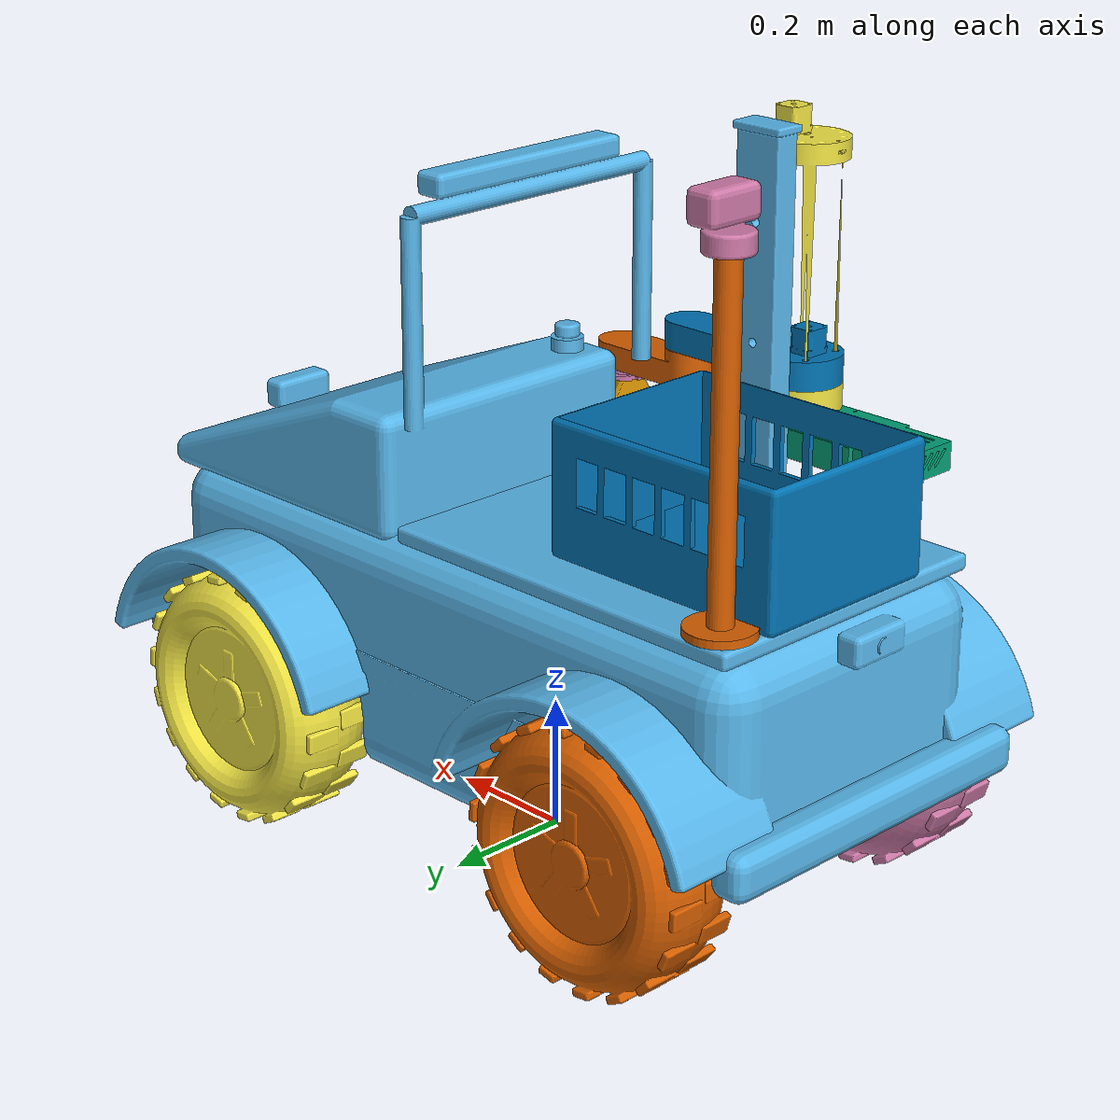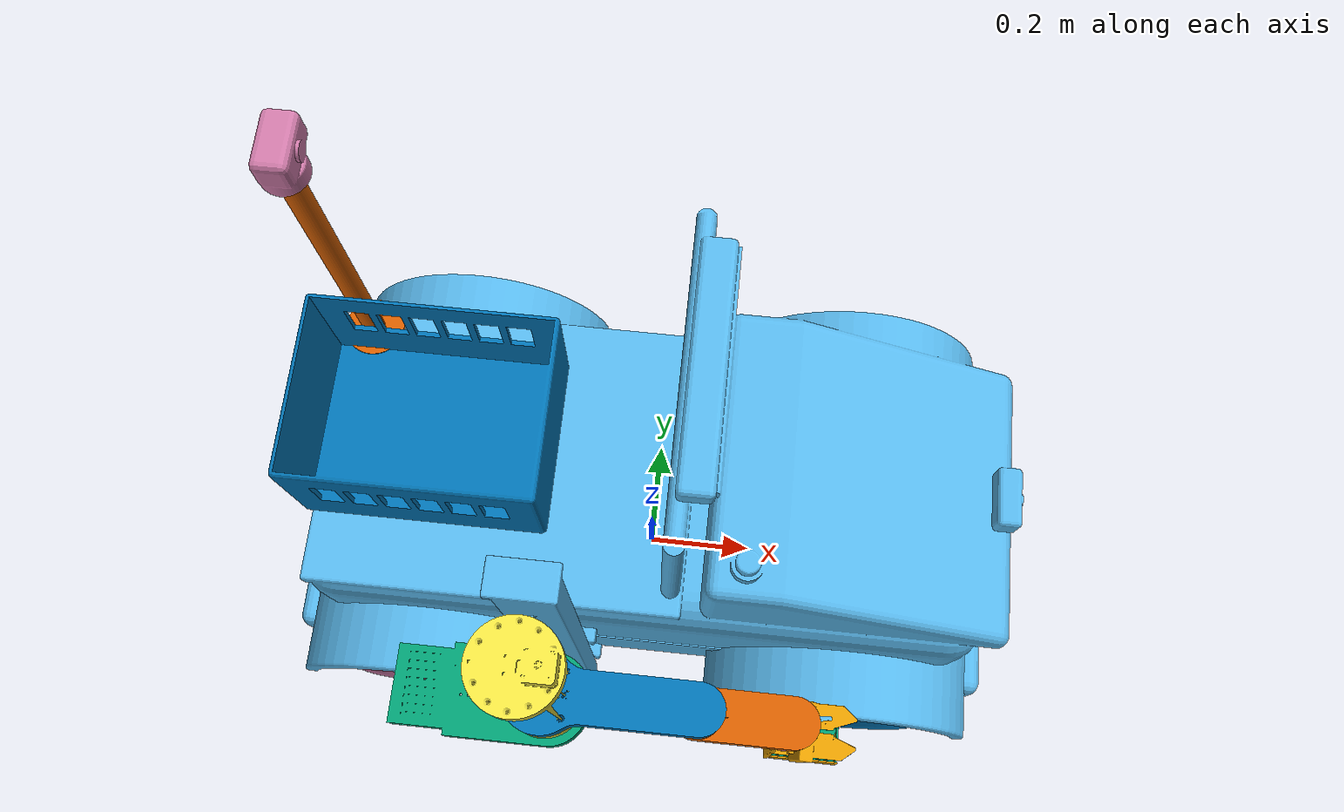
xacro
<?xml version="1.0"?>
<robot name="agribot" xmlns:xacro="http://www.ros.org/wiki/xacro">
  <xacro:arg name="tool" default="cutter"/>
  <xacro:arg name="mast_pin" default="2"/>
  <xacro:property name="mast_pins" value="${[0.10, 0.28, 0.46, 0.64, 0.82]}"/>

  <xacro:include filename="$(find agribot_description)/urdf/rover.urdf.xacro"/>
  <xacro:include filename="$(find agribot_description)/urdf/scara.urdf.xacro"/>
  <xacro:include filename="$(find agribot_description)/urdf/cutter.urdf.xacro"/>
  <xacro:include filename="$(find agribot_description)/urdf/stock_gripper.urdf.xacro"/>

  <xacro:agribot_rover prefix=""/>
  <xacro:agribot_scara prefix="scara_"/>
  <joint name="scara_mount" type="fixed">
    <parent link="scara_mast"/>
    <child link="scara_base_link"/>
    <origin xyz="0 -0.095 ${mast_pins[$(arg mast_pin)]}" rpy="0 0 0"/>
  </joint>
  <xacro:if value="${'$(arg tool)' == 'cutter'}">
    <xacro:agribot_cutter prefix="scara_"/>
  </xacro:if>
  <xacro:if value="${'$(arg tool)' == 'gripper'}">
    <xacro:agribot_stock_gripper prefix="scara_"/>
  </xacro:if>
</robot>

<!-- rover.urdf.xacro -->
<robot xmlns:xacro="http://www.ros.org/wiki/xacro">
<xacro:macro name="agribot_rover" params="prefix">
  <link name="${prefix}base_footprint"/>
  <link name="${prefix}base_link">
    <inertial>
      <!-- estimate: ride-on chassis with batteries -->
      <origin xyz="0 0 0.205" rpy="0 0 0"/>
      <mass value="30"/>
      <inertia ixx="1.4065" ixy="0" ixz="0" iyy="4.00525" iyz="0" izz="3.89925"/>
    </inertial>
    <visual>
      <origin xyz="0 0 0" rpy="0 0 0"/>
      <geometry><mesh filename="package://agribot_description/meshes/rover/visual/rover_body.obj"/></geometry>
    </visual>
    <collision>
      <origin xyz="0 0 0.205" rpy="0 0 0"/>
      <geometry><box size="1.14 0.51 0.55"/></geometry>
    </collision>
  </link>
  <joint name="${prefix}base_joint" type="fixed">
    <parent link="${prefix}base_footprint"/>
    <child link="${prefix}base_link"/>
    <origin xyz="0 0 0.19" rpy="0 0 0"/>
  </joint>
  <link name="${prefix}steer_link">
    <inertial>
      <!-- estimate -->
      <origin xyz="0 0 0" rpy="0 0 0"/>
      <mass value="0.5"/>
      <inertia ixx="0.00514167" ixy="0" ixz="0" iyy="0.000141667" iyz="0" izz="0.00520833"/>
    </inertial>
  </link>
  <joint name="${prefix}steer_joint" type="revolute">
    <!-- one steering motor, parallel steer until the real linkage is measured; wheelbase, track and limit are assumed (docs/work-plan.md) -->
    <parent link="${prefix}base_link"/>
    <child link="${prefix}steer_link"/>
    <origin xyz="0.36 0 0" rpy="0 0 0"/>
    <axis xyz="0 0 1"/>
    <limit lower="-0.436332" upper="0.436332" effort="20" velocity="1"/>
    <dynamics damping="1" friction="0.1"/>
  </joint>
  <link name="${prefix}front_left_wheel">
    <inertial>
      <!-- estimate -->
      <origin xyz="0 0 0" rpy="0 0 0"/>
      <mass value="1.5"/>
      <inertia ixx="0.01635" ixy="0" ixz="0" iyy="0.027075" iyz="0" izz="0.01635"/>
    </inertial>
    <visual>
      <origin xyz="0 0 0" rpy="0 0 0"/>
      <geometry><mesh filename="package://agribot_description/meshes/rover/visual/wheel.obj"/></geometry>
    </visual>
    <collision>
      <origin xyz="0 0 0" rpy="1.5708 0 0"/>
      <geometry><cylinder radius="0.19" length="0.15"/></geometry>
    </collision>
  </link>
  <joint name="${prefix}front_left_wheel_joint" type="continuous">
    <parent link="${prefix}steer_link"/>
    <child link="${prefix}front_left_wheel"/>
    <origin xyz="0 0.275 0" rpy="0 0 0"/>
    <axis xyz="0 1 0"/>
    <limit effort="40" velocity="6"/>
    <dynamics damping="0.2" friction="0.05"/>
  </joint>
  <link name="${prefix}front_right_wheel">
    <inertial>
      <!-- estimate -->
      <origin xyz="0 0 0" rpy="0 0 0"/>
      <mass value="1.5"/>
      <inertia ixx="0.01635" ixy="0" ixz="0" iyy="0.027075" iyz="0" izz="0.01635"/>
    </inertial>
    <visual>
      <origin xyz="0 0 0" rpy="0 0 0"/>
      <geometry><mesh filename="package://agribot_description/meshes/rover/visual/wheel.obj"/></geometry>
    </visual>
    <collision>
      <origin xyz="0 0 0" rpy="1.5708 0 0"/>
      <geometry><cylinder radius="0.19" length="0.15"/></geometry>
    </collision>
  </link>
  <joint name="${prefix}front_right_wheel_joint" type="continuous">
    <parent link="${prefix}steer_link"/>
    <child link="${prefix}front_right_wheel"/>
    <origin xyz="0 -0.275 0" rpy="0 0 0"/>
    <axis xyz="0 1 0"/>
    <limit effort="40" velocity="6"/>
    <dynamics damping="0.2" friction="0.05"/>
  </joint>
  <link name="${prefix}rear_left_wheel">
    <inertial>
      <!-- estimate -->
      <origin xyz="0 0 0" rpy="0 0 0"/>
      <mass value="1.5"/>
      <inertia ixx="0.01635" ixy="0" ixz="0" iyy="0.027075" iyz="0" izz="0.01635"/>
    </inertial>
    <visual>
      <origin xyz="0 0 0" rpy="0 0 0"/>
      <geometry><mesh filename="package://agribot_description/meshes/rover/visual/wheel.obj"/></geometry>
    </visual>
    <collision>
      <origin xyz="0 0 0" rpy="1.5708 0 0"/>
      <geometry><cylinder radius="0.19" length="0.15"/></geometry>
    </collision>
  </link>
  <joint name="${prefix}rear_left_wheel_joint" type="continuous">
    <parent link="${prefix}base_link"/>
    <child link="${prefix}rear_left_wheel"/>
    <origin xyz="-0.36 0.275 0" rpy="0 0 0"/>
    <axis xyz="0 1 0"/>
    <limit effort="40" velocity="6"/>
    <dynamics damping="0.2" friction="0.05"/>
  </joint>
  <link name="${prefix}rear_right_wheel">
    <inertial>
      <!-- estimate -->
      <origin xyz="0 0 0" rpy="0 0 0"/>
      <mass value="1.5"/>
      <inertia ixx="0.01635" ixy="0" ixz="0" iyy="0.027075" iyz="0" izz="0.01635"/>
    </inertial>
    <visual>
      <origin xyz="0 0 0" rpy="0 0 0"/>
      <geometry><mesh filename="package://agribot_description/meshes/rover/visual/wheel.obj"/></geometry>
    </visual>
    <collision>
      <origin xyz="0 0 0" rpy="1.5708 0 0"/>
      <geometry><cylinder radius="0.19" length="0.15"/></geometry>
    </collision>
  </link>
  <joint name="${prefix}rear_right_wheel_joint" type="continuous">
    <parent link="${prefix}base_link"/>
    <child link="${prefix}rear_right_wheel"/>
    <origin xyz="-0.36 -0.275 0" rpy="0 0 0"/>
    <axis xyz="0 1 0"/>
    <limit effort="40" velocity="6"/>
    <dynamics damping="0.2" friction="0.05"/>
  </joint>
  <link name="${prefix}front_camera_link"/>
  <link name="${prefix}front_camera_link_optical_frame"/>
  <joint name="${prefix}front_camera_link_optical_joint" type="fixed">
    <parent link="${prefix}front_camera_link"/>
    <child link="${prefix}front_camera_link_optical_frame"/>
    <origin xyz="0 0 0" rpy="-1.5708 0 -1.5708"/>
  </joint>
  <joint name="${prefix}front_camera_joint" type="fixed">
    <parent link="${prefix}base_link"/>
    <child link="${prefix}front_camera_link"/>
    <origin xyz="0.602 0 0.36" rpy="0 0 0"/>
  </joint>
  <link name="${prefix}rear_camera_link"/>
  <link name="${prefix}rear_camera_link_optical_frame"/>
  <joint name="${prefix}rear_camera_link_optical_joint" type="fixed">
    <parent link="${prefix}rear_camera_link"/>
    <child link="${prefix}rear_camera_link_optical_frame"/>
    <origin xyz="0 0 0" rpy="-1.5708 0 -1.5708"/>
  </joint>
  <joint name="${prefix}rear_camera_joint" type="fixed">
    <parent link="${prefix}base_link"/>
    <child link="${prefix}rear_camera_link"/>
    <origin xyz="-0.607 0 0.29" rpy="0 0 3.14159"/>
  </joint>
  <link name="${prefix}imu_link"/>
  <joint name="${prefix}imu_joint" type="fixed">
    <parent link="${prefix}base_link"/>
    <child link="${prefix}imu_link"/>
    <origin xyz="0 0 0.26" rpy="0 0 0"/>
  </joint>
  <link name="${prefix}harvest_crate">
    <inertial>
      <!-- estimate, empty -->
      <origin xyz="0 0 0.1" rpy="0 0 0"/>
      <mass value="0.6"/>
      <inertia ixx="0.0065" ixy="0" ixz="0" iyy="0.01" iyz="0" izz="0.0125"/>
    </inertial>
    <visual>
      <origin xyz="0 0 0" rpy="0 0 0"/>
      <geometry><mesh filename="package://agribot_description/meshes/rover/visual/harvest_crate.obj"/></geometry>
    </visual>
  </link>
  <joint name="${prefix}harvest_crate_joint" type="fixed">
    <parent link="${prefix}base_link"/>
    <child link="${prefix}harvest_crate"/>
    <origin xyz="-0.36 0.02 0.335" rpy="0 0 0"/>
  </joint>
  <link name="${prefix}scout_mast">
    <inertial>
      <!-- estimate -->
      <origin xyz="0 0 0.25" rpy="0 0 0"/>
      <mass value="0.4"/>
      <inertia ixx="0.00838667" ixy="0" ixz="0" iyy="0.00838667" iyz="0" izz="0.000106667"/>
    </inertial>
    <visual>
      <origin xyz="0 0 0" rpy="0 0 0"/>
      <geometry><mesh filename="package://agribot_description/meshes/rover/visual/scout_mast.obj"/></geometry>
    </visual>
  </link>
  <joint name="${prefix}scout_mast_joint" type="fixed">
    <parent link="${prefix}base_link"/>
    <child link="${prefix}scout_mast"/>
    <origin xyz="-0.5 0.2 0.335" rpy="0 0 0"/>
  </joint>
  <link name="${prefix}scout_pan_link">
    <inertial>
      <!-- estimate -->
      <origin xyz="0 0 0.05" rpy="0 0 0"/>
      <mass value="0.15"/>
      <inertia ixx="0.00018125" ixy="0" ixz="0" iyy="0.00014125" iyz="0" izz="0.0001625"/>
    </inertial>
    <visual>
      <origin xyz="0 0 0" rpy="0 0 0"/>
      <geometry><mesh filename="package://agribot_description/meshes/rover/visual/scout_head.obj"/></geometry>
    </visual>
  </link>
  <joint name="${prefix}scout_pan_joint" type="revolute">
    <!-- pan mechanism for the rotating scouting camera -->
    <parent link="${prefix}scout_mast"/>
    <child link="${prefix}scout_pan_link"/>
    <origin xyz="0 0 0.5" rpy="0 0 0"/>
    <axis xyz="0 0 1"/>
    <limit lower="-3.14159" upper="3.14159" effort="1" velocity="1.5"/>
    <dynamics damping="0.05" friction="0.01"/>
  </joint>
  <link name="${prefix}scout_camera_link"/>
  <link name="${prefix}scout_camera_link_optical_frame"/>
  <joint name="${prefix}scout_camera_link_optical_joint" type="fixed">
    <parent link="${prefix}scout_camera_link"/>
    <child link="${prefix}scout_camera_link_optical_frame"/>
    <origin xyz="0 0 0" rpy="-1.5708 0 -1.5708"/>
  </joint>
  <joint name="${prefix}scout_camera_joint" type="fixed">
    <parent link="${prefix}scout_pan_link"/>
    <child link="${prefix}scout_camera_link"/>
    <origin xyz="0.04 0 0.06" rpy="0 0 0"/>
  </joint>
  <link name="${prefix}scara_mast">
    <inertial>
      <!-- estimate -->
      <origin xyz="0 0 0.475" rpy="0 0 0"/>
      <mass value="2.5"/>
      <inertia ixx="0.188354" ixy="0" ixz="0" iyy="0.189354" iyz="0" izz="0.00166667"/>
    </inertial>
    <visual>
      <origin xyz="0 0 0" rpy="0 0 0"/>
      <geometry><mesh filename="package://agribot_description/meshes/rover/visual/scara_mast.obj"/></geometry>
    </visual>
    <collision>
      <origin xyz="0 0 0.475" rpy="0 0 0"/>
      <geometry><box size="0.08 0.04 0.95"/></geometry>
    </collision>
  </link>
  <joint name="${prefix}scara_mast_joint" type="fixed">
    <!-- side mast; the SCARA base pins on at one of five heights -->
    <parent link="${prefix}base_link"/>
    <child link="${prefix}scara_mast"/>
    <origin xyz="-0.12 -0.3 -0.11" rpy="0 0 0"/>
  </joint>
</xacro:macro>
</robot>

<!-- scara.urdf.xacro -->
<robot xmlns:xacro="http://www.ros.org/wiki/xacro">
<xacro:macro name="agribot_scara" params="prefix">
  <link name="${prefix}base_link">
    <inertial>
      <!-- estimate: mesh volumes x effective density: printed 560 kg/m3, metal 7850 kg/m3, motor 3800 kg/m3, belt 1200 kg/m3, switch 1500 kg/m3. Estimates; weigh the real parts. -->
      <origin xyz="-0.0712791 0.00956844 0.0371431" rpy="0 0 0"/>
      <mass value="0.833682"/>
      <inertia ixx="0.00124008" ixy="0.000315526" ixz="0.000159535" iyy="0.00418148" iyz="-0.000150768" izz="0.00491594"/>
    </inertial>
    <visual>
      <origin xyz="0 0 0" rpy="0 0 0"/>
      <geometry><mesh filename="package://agribot_description/meshes/scara/visual/base_link.obj"/></geometry>
    </visual>
    <collision>
      <geometry><mesh filename="package://agribot_description/meshes/scara/collision/base_link.stl"/></geometry>
    </collision>
  </link>
  <link name="${prefix}column_link">
    <inertial>
      <!-- estimate: mesh volumes x effective density: printed 560 kg/m3, metal 7850 kg/m3, motor 3800 kg/m3, belt 1200 kg/m3, switch 1500 kg/m3. Estimates; weigh the real parts. -->
      <origin xyz="0.00742286 3.44212e-06 0.228887" rpy="0 0 0"/>
      <mass value="1.80729"/>
      <inertia ixx="0.0462066" ixy="-1.87405e-09" ixz="-0.00165238" iyy="0.0465499" iyz="-1.66436e-07" izz="0.00324059"/>
    </inertial>
    <visual>
      <origin xyz="0 0 0" rpy="0 0 0"/>
      <geometry><mesh filename="package://agribot_description/meshes/scara/visual/column_link.obj"/></geometry>
    </visual>
    <collision>
      <geometry><mesh filename="package://agribot_description/meshes/scara/collision/column_link.stl"/></geometry>
    </collision>
  </link>
  <link name="${prefix}carriage_link">
    <inertial>
      <!-- estimate: mesh volumes x effective density: printed 560 kg/m3, metal 7850 kg/m3, motor 3800 kg/m3, belt 1200 kg/m3, switch 1500 kg/m3. Estimates; weigh the real parts. -->
      <origin xyz="0.0811465 -8.9567e-07 0.0295613" rpy="0 0 0"/>
      <mass value="0.946238"/>
      <inertia ixx="0.0011079" ixy="7.57917e-07" ixz="0.00164601" iyy="0.0110148" iyz="-3.88306e-07" izz="0.0109244"/>
    </inertial>
    <visual>
      <origin xyz="0 0 0" rpy="0 0 0"/>
      <geometry><mesh filename="package://agribot_description/meshes/scara/visual/carriage_link.obj"/></geometry>
    </visual>
    <collision>
      <geometry><mesh filename="package://agribot_description/meshes/scara/collision/carriage_link.stl"/></geometry>
    </collision>
  </link>
  <link name="${prefix}arm2_link">
    <inertial>
      <!-- estimate: mesh volumes x effective density: printed 560 kg/m3, metal 7850 kg/m3, motor 3800 kg/m3, belt 1200 kg/m3, switch 1500 kg/m3. Estimates; weigh the real parts. -->
      <origin xyz="0.0691927 8.7085e-07 -0.0313833" rpy="0 0 0"/>
      <mass value="0.569879"/>
      <inertia ixx="0.000428514" ixy="2.76917e-07" ixz="-4.59967e-05" iyy="0.00300115" iyz="-2.11427e-07" izz="0.00292892"/>
    </inertial>
    <visual>
      <origin xyz="0 0 0" rpy="0 0 0"/>
      <geometry><mesh filename="package://agribot_description/meshes/scara/visual/arm2_link.obj"/></geometry>
    </visual>
    <collision>
      <geometry><mesh filename="package://agribot_description/meshes/scara/collision/arm2_link.stl"/></geometry>
    </collision>
  </link>
  <link name="${prefix}wrist_link">
    <inertial>
      <!-- estimate: mesh volumes x effective density: printed 560 kg/m3, metal 7850 kg/m3, motor 3800 kg/m3, belt 1200 kg/m3, switch 1500 kg/m3. Estimates; weigh the real parts. -->
      <origin xyz="0.000443116 -0.000165271 -7.39752e-05" rpy="0 0 0"/>
      <mass value="0.0372179"/>
      <inertia ixx="1.9538e-05" ixy="-2.60341e-08" ixz="1.66016e-07" iyy="1.94947e-05" iyz="-7.77842e-08" izz="2.00665e-05"/>
    </inertial>
    <visual>
      <origin xyz="0 0 0" rpy="0 0 0"/>
      <geometry><mesh filename="package://agribot_description/meshes/scara/visual/wrist_link.obj"/></geometry>
    </visual>
    <collision>
      <geometry><mesh filename="package://agribot_description/meshes/scara/collision/wrist_link.stl"/></geometry>
    </collision>
  </link>
  <link name="${prefix}tool_flange"/>
  <joint name="${prefix}j1" type="revolute">
    <!-- limits: assumed; set from the J1 home switch and cabling; effort/velocity: estimate -->
    <parent link="${prefix}base_link"/>
    <child link="${prefix}column_link"/>
    <origin xyz="0 0 0.035" rpy="0 0 0"/>
    <axis xyz="0 0 1"/>
    <limit lower="-2.96706" upper="2.96706" effort="2" velocity="1"/>
    <dynamics damping="0.5" friction="0.05"/>
  </joint>
  <joint name="${prefix}z" type="prismatic">
    <!-- limits: part clearances in the STEP: platform on base cover, J2 motor at the Z top limit switch; effort/velocity: estimate -->
    <parent link="${prefix}column_link"/>
    <child link="${prefix}carriage_link"/>
    <origin xyz="0 0 0.0625" rpy="0 0 0"/>
    <axis xyz="0 0 1"/>
    <limit lower="0" upper="0.249" effort="100" velocity="0.05"/>
    <dynamics damping="20" friction="1"/>
  </joint>
  <joint name="${prefix}j2" type="revolute">
    <!-- limits: assumed; check Arm 2 against the column; effort/velocity: estimate -->
    <parent link="${prefix}carriage_link"/>
    <child link="${prefix}arm2_link"/>
    <origin xyz="0.227977 0 -0.019" rpy="0 0 0"/>
    <axis xyz="0 0 1"/>
    <limit lower="-2.61799" upper="2.61799" effort="3" velocity="1.2"/>
    <dynamics damping="0.3" friction="0.05"/>
  </joint>
  <joint name="${prefix}j3" type="revolute">
    <!-- limits: assumed; keeps the tool cables from winding up; effort/velocity: estimate -->
    <parent link="${prefix}arm2_link"/>
    <child link="${prefix}wrist_link"/>
    <origin xyz="0.136488 0 -0.039" rpy="0 0 0"/>
    <axis xyz="0 0 1"/>
    <limit lower="-2.61799" upper="2.61799" effort="0.8" velocity="2"/>
    <dynamics damping="0.05" friction="0.01"/>
  </joint>
  <joint name="${prefix}tool_flange_joint" type="fixed">
    <!-- J3 coupler underside; tools bolt on here -->
    <parent link="${prefix}wrist_link"/>
    <child link="${prefix}tool_flange"/>
    <origin xyz="0 0 -0.018" rpy="0 0 0"/>
  </joint>
</xacro:macro>
</robot>

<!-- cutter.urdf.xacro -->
<robot xmlns:xacro="http://www.ros.org/wiki/xacro">
<xacro:macro name="agribot_cutter" params="prefix">
  <link name="${prefix}cutter_body">
    <inertial>
      <!-- estimate: two MG996R, PETG body, camera (docs/scara-redesign.md) -->
      <origin xyz="0.03 0 -0.07" rpy="0 0 0"/>
      <mass value="0.28"/>
      <inertia ixx="0.000714" ixy="0" ixz="0" iyy="0.000919333" iyz="0" izz="0.000583333"/>
    </inertial>
    <visual>
      <origin xyz="0 0 0" rpy="0 0 0"/>
      <geometry><mesh filename="package://agribot_description/meshes/cutter/visual/cutter_body.obj"/></geometry>
    </visual>
    <collision name="top_plate">
      <origin xyz="0.051 0 -0.05" rpy="0 0 0"/>
      <geometry><box size="0.134 0.084 0.004"/></geometry>
    </collision>
    <collision name="spine">
      <origin xyz="-0.012 0 -0.0765" rpy="0 0 0"/>
      <geometry><box size="0.008 0.09 0.147"/></geometry>
    </collision>
    <collision name="wall_right">
      <origin xyz="0.046 0.0435 -0.119" rpy="0 0 0"/>
      <geometry><box size="0.108 0.003 0.042"/></geometry>
    </collision>
    <collision name="wall_left">
      <origin xyz="0.046 -0.0435 -0.119" rpy="0 0 0"/>
      <geometry><box size="0.108 0.003 0.042"/></geometry>
    </collision>
    <collision name="servo1">
      <origin xyz="0.0263 0.0298 -0.0255" rpy="0 0 0"/>
      <geometry><box size="0.0407 0.0197 0.037"/></geometry>
    </collision>
    <collision name="camera">
      <origin xyz="0.03 -0.03 -0.026" rpy="0 0 0"/>
      <geometry><box size="0.023 0.042 0.042"/></geometry>
    </collision>
  </link>
  <link name="${prefix}cutter_blade">
    <inertial>
      <!-- estimate -->
      <origin xyz="0.01 0 0.001" rpy="0 0 0"/>
      <mass value="0.008"/>
      <inertia ixx="7.73333e-08" ixy="0" ixz="0" iyy="6.10667e-07" iyz="0" izz="6.66667e-07"/>
    </inertial>
    <visual>
      <origin xyz="0 0 0" rpy="0 0 0"/>
      <geometry><mesh filename="package://agribot_description/meshes/cutter/visual/cutter_blade.obj"/></geometry>
    </visual>
  </link>
  <link name="${prefix}cutter_door">
    <inertial>
      <!-- estimate -->
      <origin xyz="-0.052 0 0.004" rpy="0 0 0"/>
      <mass value="0.03"/>
      <inertia ixx="1.7525e-05" ixy="0" ixz="0" iyy="2.73425e-05" iyz="0" izz="4.42625e-05"/>
    </inertial>
    <visual>
      <origin xyz="0 0 0" rpy="0 0 0"/>
      <geometry><mesh filename="package://agribot_description/meshes/cutter/visual/cutter_door.obj"/></geometry>
    </visual>
    <collision>
      <origin xyz="-0.052 0 0.0065" rpy="0 0 0"/>
      <geometry><box size="0.104 0.083 0.011"/></geometry>
    </collision>
  </link>
  <link name="${prefix}cut_point"/>
  <link name="${prefix}tool0"/>
  <link name="${prefix}arm_camera_link"/>
  <link name="${prefix}arm_camera_link_optical_frame"/>
  <joint name="${prefix}arm_camera_link_optical_joint" type="fixed">
    <parent link="${prefix}arm_camera_link"/>
    <child link="${prefix}arm_camera_link_optical_frame"/>
    <origin xyz="0 0 0" rpy="-1.5708 0 -1.5708"/>
  </joint>
  <joint name="${prefix}cutter_mount" type="fixed">
    <parent link="${prefix}tool_flange"/>
    <child link="${prefix}cutter_body"/>
    <origin xyz="0 0 0" rpy="0 0 0"/>
  </joint>
  <joint name="${prefix}cutter_blade_joint" type="revolute">
    <!-- 0 = open, lower limit = fully closed across the throat -->
    <parent link="${prefix}cutter_body"/>
    <child link="${prefix}cutter_blade"/>
    <origin xyz="0.048 0.014 -0.047" rpy="0 0 0.261799"/>
    <axis xyz="0 0 1"/>
    <limit lower="-1.22173" upper="0" effort="0.9" velocity="3"/>
    <dynamics damping="0.01" friction="0.002"/>
  </joint>
  <joint name="${prefix}cutter_door_joint" type="revolute">
    <!-- 0 = closed; positive opens the trap door -->
    <parent link="${prefix}cutter_body"/>
    <child link="${prefix}cutter_door"/>
    <origin xyz="0.098 0 -0.14" rpy="0 0 0"/>
    <axis xyz="0 1 0"/>
    <limit lower="0" upper="1.309" effort="0.9" velocity="3"/>
    <dynamics damping="0.01" friction="0.002"/>
  </joint>
  <joint name="${prefix}cut_point_joint" type="fixed">
    <!-- centre of the 6 mm throat: the pedicel is cut here -->
    <parent link="${prefix}cutter_body"/>
    <child link="${prefix}cut_point"/>
    <origin xyz="0.0655 0 -0.05" rpy="0 0 0"/>
  </joint>
  <joint name="${prefix}tool0_joint" type="fixed">
    <parent link="${prefix}cutter_body"/>
    <child link="${prefix}tool0"/>
    <origin xyz="0.0655 0 -0.05" rpy="0 0 0"/>
  </joint>
  <joint name="${prefix}arm_camera_joint" type="fixed">
    <!-- RGB-D camera front face, pitched down -->
    <parent link="${prefix}cutter_body"/>
    <child link="${prefix}arm_camera_link"/>
    <origin xyz="0.0409004 -0.03 -0.0299674" rpy="0 0.349066 0"/>
  </joint>
</xacro:macro>
</robot>
